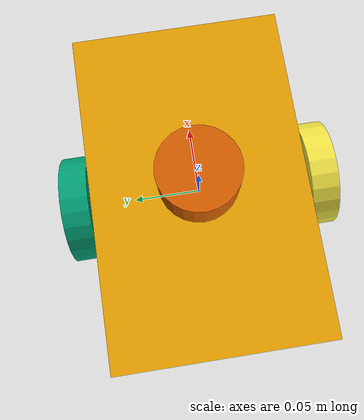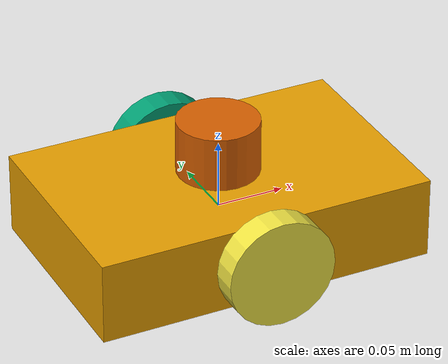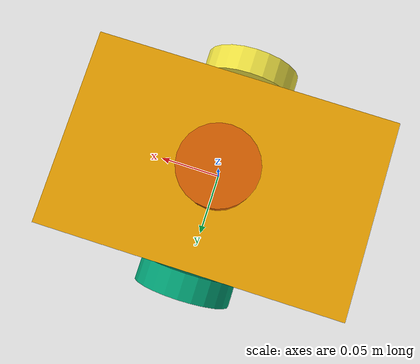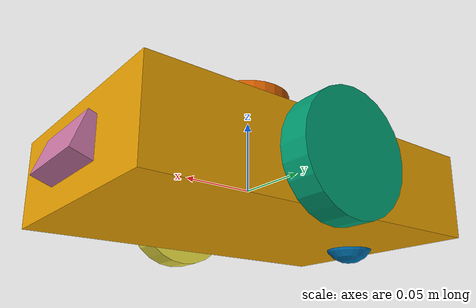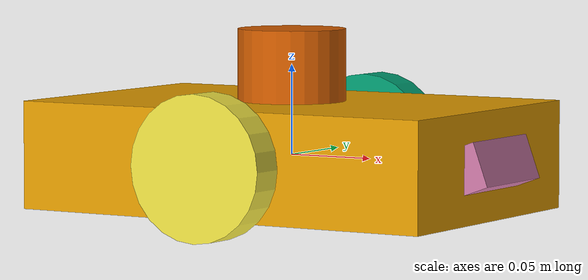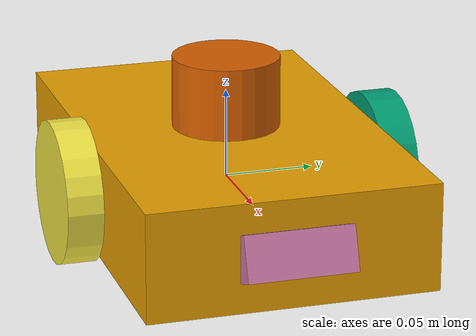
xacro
<?xml version="1.0"?>
<robot name="fuga" xmlns:xacro="http://www.ros.org/wiki/xacro">
  <!-- Parametros del robot. Centralizarlos aqui permite cambiar dimensiones
       sin tocar cada link; todas las unidades en SI (metros, kg) -->
  <!-- Chasis: dimensiones de la caja (largo x ancho x alto) y masa -->
  <xacro:property name="body_x" value="0.25"/>
  <xacro:property name="body_y" value="0.16"/>
  <xacro:property name="body_z" value="0.06"/>
  <xacro:property name="body_m" value="2.0"/>
  <!-- Ruedas motrices: radio, ancho y masa de cada una -->
  <xacro:property name="wheel_r" value="0.04"/>
  <xacro:property name="wheel_w" value="0.02"/>
  <xacro:property name="wheel_m" value="0.2"/>
  <xacro:property name="left_wheel" value="left_wheel"/>
  <xacro:property name="right_wheel" value="right_wheel"/>

  <xacro:property name="wheel_sep" value="${body_y + wheel_w}"/>
  <!-- Radio de la esfera de la rueda loca: la mitad que la rueda motriz, para que
       escale con ella y quepa bajo el chasis -->
  <xacro:property name="caster_r" value="${wheel_r/2}"/>
  <!-- Holgura entre la esfera de la rueda loca y el borde trasero del chasis,
       para que no asome por detras y choque antes que el chasis -->
  <xacro:property name="caster_margin" value="0.005"/>

  <xacro:macro name="box_inertia" params="m x y z">
    <inertial><mass value="${m}"/>
      <inertia ixx="${m/12*(y*y+z*z)}" iyy="${m/12*(x*x+z*z)}" izz="${m/12*(x*x+y*y)}" ixy="0" ixz="0" iyz="0"/>
    </inertial>
  </xacro:macro>

  <!-- Macro de una rueda motriz: link + joint. Se usa dos veces (izquierda y derecha)
       para no duplicar el bloque. side: +1 izquierda (y positiva), -1 derecha -->
  <xacro:macro name="wheel" params="name side">
    <link name="${name}">
      <!-- En URDF el cilindro tiene su eje en z; se gira pi/2 en roll para
           tumbarlo y que su eje quede en y, que es el eje de giro de la rueda -->
      <visual><origin rpy="${pi/2} 0 0"/><geometry><cylinder radius="${wheel_r}" length="${wheel_w}"/></geometry></visual>
      <collision><origin rpy="${pi/2} 0 0"/><geometry><cylinder radius="${wheel_r}" length="${wheel_w}"/></geometry></collision>
      <inertial><mass value="${wheel_m}"/><origin rpy="${pi/2} 0 0"/>
        <inertia ixx="${wheel_m/12*(3*wheel_r**2+wheel_w**2)}" iyy="${wheel_m/12*(3*wheel_r**2+wheel_w**2)}" izz="${wheel_m*wheel_r**2/2}" ixy="0" ixz="0" iyz="0"/>
      </inertial>
    </link>
    <!-- continuous: articulacion de giro sin limites, lo propio de una rueda.
         Se coloca a la altura del centro del chasis (z=0) y desplazada en y a cada lado -->
    <joint name="${name}_joint" type="continuous">
      <parent link="base_link"/><child link="${name}"/>
      <origin xyz="0 ${side*wheel_sep/2} 0"/>
      <!-- Gira alrededor de y: velocidad positiva hace avanzar el robot en +x -->
      <axis xyz="0 1 0"/>
    </joint>
  </xacro:macro>

  <!-- Link raiz del robot: el chasis. Su origen esta en el centro de la caja y es
       el frame que usan odometria, navegacion y TF como referencia del robot -->
  <link name="base_link">
    <visual><geometry><box size="${body_x} ${body_y} ${body_z}"/></geometry></visual>
    <!-- collision repite la geometria visual; con formas simples no hace falta
         una malla de colision aparte -->
    <collision><geometry><box size="${body_x} ${body_y} ${body_z}"/></geometry></collision>
    <xacro:box_inertia m="${body_m}" x="${body_x}" y="${body_y}" z="${body_z}"/>
  </link>

  <link name="base_footprint"/>
  <joint name="base_footprint_joint" type="fixed">
    <parent link="base_link"/><child link="base_footprint"/>
    <origin xyz="0 0 ${-wheel_r}"/>
  </joint>

  <!-- Instancias de la macro: rueda izquierda en +y, derecha en -y -->
  <xacro:wheel name="${left_wheel}"  side="1"/>
  <xacro:wheel name="${right_wheel}" side="-1"/>

  <link name="caster">
    <visual><geometry><sphere radius="${caster_r}"/></geometry></visual>
    <collision><geometry><sphere radius="${caster_r}"/></geometry></collision>
    <!-- Masa e inercia pequenas: solo para que Gazebo acepte el link,
         no influyen apreciablemente en la dinamica -->
    <inertial><mass value="0.05"/><inertia ixx="1e-5" iyy="1e-5" izz="1e-5" ixy="0" ixz="0" iyz="0"/></inertial>
  </link>
  <joint name="caster_joint" type="fixed">
    <parent link="base_link"/><child link="caster"/>
    <origin xyz="${-(body_x/2 - caster_r - caster_margin)} 0 ${caster_r - wheel_r}"/>
  </joint>
  <!-- Propiedades especificas de Gazebo: coeficientes de friccion mu1/mu2 a 0
       para que la esfera deslice y no frene ni desvie el giro del robot -->
  <gazebo reference="caster"><mu1>0.0</mu1><mu2>0.0</mu2></gazebo>

  <!-- Lidar: solo visual, sin collision ni inertial porque no participa en la
       fisica; su funcion es dar un frame "lidar" donde montar el sensor -->
  <link name="lidar"><visual><geometry><cylinder radius="0.03" length="0.04"/></geometry></visual></link>
  <!-- Encima del chasis: body_z/2 llega a la tapa y +0.02 (media altura del
       cilindro) apoya el lidar sobre ella. Montado alto y centrado para que el
       chasis no tape el barrido de 360 grados -->
  <joint name="lidar_joint" type="fixed">
    <parent link="base_link"/><child link="lidar"/><origin xyz="0 0 ${body_z/2 + 0.02}"/>
  </joint>

  <gazebo reference="lidar">
    <sensor name="lidar_sensor" type="gpu_lidar">
      <always_on>1</always_on>
      <update_rate>20</update_rate>
      <visualize>true</visualize>
      <topic>lidar</topic>
      <gz_frame_id>lidar</gz_frame_id>
      <lidar>
        <!-- Vuelta completa con un rayo por grado: en el laberinto interesa ver
             tambien las paredes laterales y las de detras, no solo delante -->
        <scan><horizontal>
          <samples>360</samples><resolution>1</resolution>
          <min_angle>${-pi}</min_angle><max_angle>${pi}</max_angle>
        </horizontal></scan>
        <!-- min por encima del radio del cilindro (0.03) para no detectarse a si
             mismo; max de sobra para celdas de 1 m -->
        <range><min>0.08</min><max>10.0</max><resolution>0.01</resolution></range>
      </lidar>
    </sensor>
  </gazebo>

<!-- Camara: caja pequena en el frontal del chasis -->
  <xacro:property name="cam_x" value="0.02"/>
  <xacro:property name="cam_y" value="0.06"/>
  <xacro:property name="cam_z" value="0.025"/>
<!-- Solo visual, como el lidar: no participa en la fisica -->
  <link name="camera_link">
    <visual><geometry><box size="${cam_x} ${cam_y} ${cam_z}"/></geometry></visual>
  </link>
  <xacro:property name="cam_pitch" value="0.35"/>
  <joint name="camera_joint" type="fixed">
    <parent link="base_link"/><child link="camera_link"/>
    <origin xyz="${body_x/2} 0 0" rpy="0 ${-cam_pitch} 0"/>
  </joint>

<!-- Frame optico (z delante, x derecha, y abajo): el que esperan los
       mensajes Image/CameraInfo de ROS. Sin geometria, solo TF -->
  <link name="camera_optical_frame"/>
  <joint name="camera_optical_joint" type="fixed">
    <parent link="camera_link"/><child link="camera_optical_frame"/>
    <origin rpy="${-pi/2} 0 ${-pi/2}"/>
  </joint>

  <gazebo reference="camera_link">
    <sensor name="camera_sensor" type="camera">
      <always_on>1</always_on>
      <update_rate>10</update_rate>
      <visualize>true</visualize>
      <topic>camera/image</topic>
      <gz_frame_id>camera_optical_frame</gz_frame_id>
      <camera>
        <horizontal_fov>1.5</horizontal_fov>
        <image><width>320</width><height>240</height><format>R8G8B8</format></image>
        <clip><near>0.05</near><far>10.0</far></clip>
        <noise><type>gaussian</type><mean>0</mean><stddev>0.007</stddev></noise>
      </camera>
    </sensor>
  </gazebo>

  <link name="imu_link"/>
  <joint name="imu_joint" type="fixed">
    <parent link="base_link"/><child link="imu_link"/><origin xyz="0 0 0"/>
  </joint>
  <gazebo reference="imu_link">
    <sensor name="imu_sensor" type="imu">
      <always_on>1</always_on>
      <!-- 100 Hz: lo habitual para fusionar con la odometria (robot_localization);
           a 1 Hz, como en el tutorial de gz, no sirve para estimar el movimiento -->
      <update_rate>100</update_rate>
      <visualize>true</visualize>
      <topic>imu</topic>
      <gz_frame_id>imu_link</gz_frame_id>
    </sensor>
  </gazebo>

  <xacro:property name="key_lin" value="0.2"/> <!-- m/s: en celdas de 1 m, 0.5 m/s es dificil de controlar -->
  <xacro:property name="key_ang" value="1.0"/> <!-- rad/s: un giro de 90 grados en ~1.6 s -->
  <xacro:macro name="key_cmd" params="key lin ang">
    <plugin
      filename="gz-sim-triggered-publisher-system"
      name="gz::sim::systems::TriggeredPublisher">
      <input type="gz.msgs.Int32" topic="/keyboard/keypress">
        <match field="data">${key}</match>
      </input>
      <output type="gz.msgs.Twist" topic="/cmd_vel">
        linear: {x: ${lin}}, angular: {z: ${ang}}
      </output>
    </plugin>
  </xacro:macro>

  <gazebo>

    <plugin
      filename="gz-sim-diff-drive-system"
      name="gz::sim::systems::DiffDrive">
      <!-- Nombres de los joints que genera la macro wheel (name + "_joint") -->
      <left_joint>left_wheel_joint</left_joint>
      <right_joint>right_wheel_joint</right_joint>
      <wheel_separation>${body_y}</wheel_separation>
      <wheel_radius>${wheel_r}</wheel_radius>
      <!-- 30 Hz: suficiente para navegar; a 1 Hz la odometria va a saltos -->
      <odom_publish_frequency>30</odom_publish_frequency>
      <topic>cmd_vel</topic>
      <odom_topic>odom</odom_topic>
      <tf_topic>tf</tf_topic>
      <frame_id>odom</frame_id>
      <child_frame_id>base_link</child_frame_id>
    </plugin>

    <plugin
      filename="gz-sim-joint-state-publisher-system"
      name="gz::sim::systems::JointStatePublisher">
      <topic>joint_states</topic>
      <update_rate>30</update_rate>
    </plugin>

    <plugin
      filename="gz-sim-pose-publisher-system"
      name="gz::sim::systems::PosePublisher">
      <publish_model_pose>true</publish_model_pose>
      <publish_link_pose>false</publish_link_pose>
      <publish_visual_pose>false</publish_visual_pose>
      <publish_collision_pose>false</publish_collision_pose>
      <publish_sensor_pose>false</publish_sensor_pose>
      <publish_nested_model_pose>false</publish_nested_model_pose>
      <use_pose_vector_msg>false</use_pose_vector_msg>
      <!-- 50 Hz: a 0.3 m/s son 6 mm entre muestras, de sobra para la longitud -->
      <update_frequency>50</update_frequency>
    </plugin>

    <!-- Flechas y espacio (codigos Qt::Key_*). Una instancia de TriggeredPublisher
         por tecla: cada una solo admite un patron de entrada -->
    <xacro:key_cmd key="16777235" lin="${key_lin}"  ang="0"/>          <!-- Arriba: avanza -->
    <xacro:key_cmd key="16777237" lin="${-key_lin}" ang="0"/>          <!-- Abajo: retrocede -->
    <xacro:key_cmd key="16777234" lin="0"           ang="${key_ang}"/> <!-- Izquierda: gira a la izquierda -->
    <xacro:key_cmd key="16777236" lin="0"           ang="${-key_ang}"/><!-- Derecha: gira a la derecha -->
    <xacro:key_cmd key="32"       lin="0"           ang="0"/>          <!-- Espacio: para -->
  </gazebo>
</robot>
